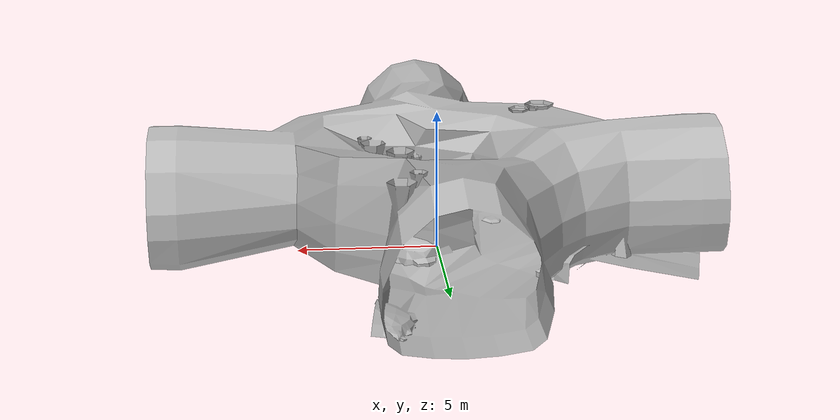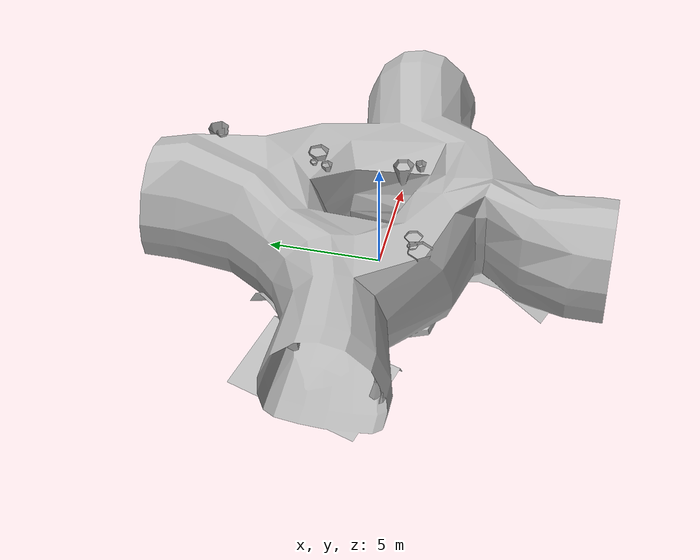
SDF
<?xml version="1.0" ?>
<sdf version="1.6">
  <model name="cave_tile_1">
    <static>true</static>
    <link name="link">
      <collision name="collision">
        <geometry>
          <mesh>
            <uri>model://cave_tile_1/meshes/cave_tile_1.dae</uri>
          </mesh>
        </geometry>
      </collision>
      <visual name="visual">
        <geometry>
          <mesh>
            <uri>model://cave_tile_1/meshes/cave_tile_1.dae</uri>
          </mesh>
        </geometry>
      </visual>
    </link>
  </model>
</sdf>
